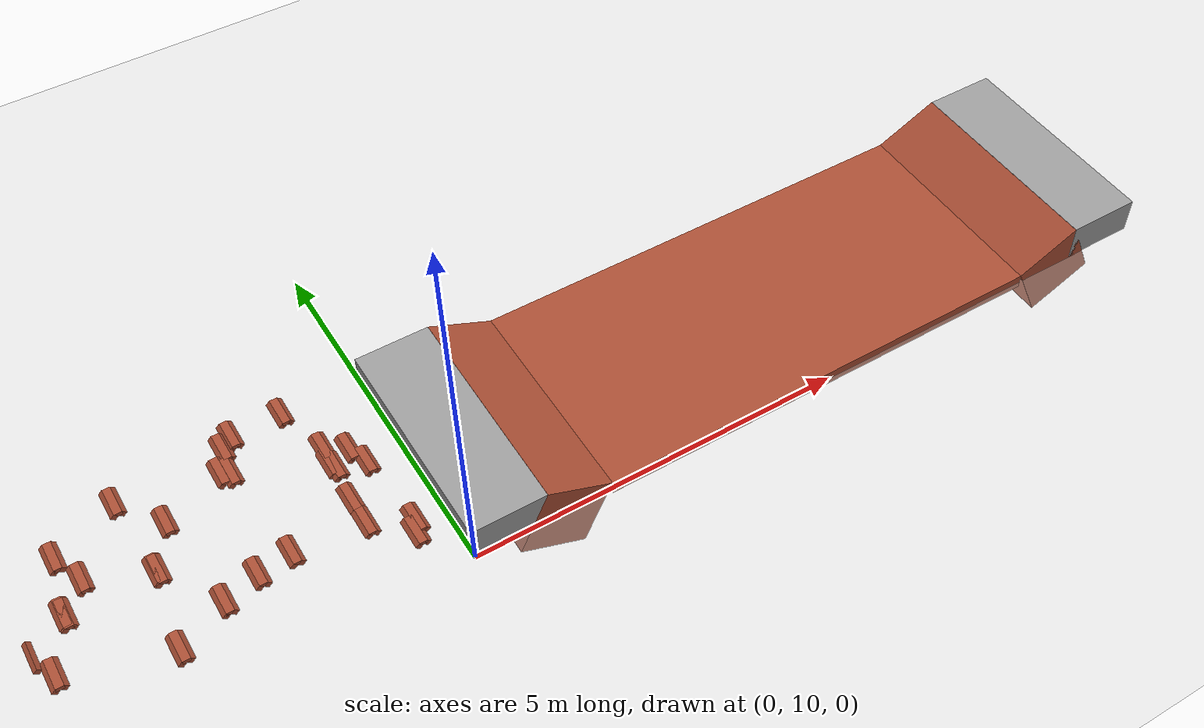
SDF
<sdf version="1.7">
 <world name="default">
  <model name="ground_plane">
   <static>1</static>
   <link name="link">
    <collision name="collision">
     <geometry><plane><normal>0 0 1</normal><size>100 100</size></plane></geometry>
     <surface><friction><ode><mu>100</mu><mu2>50</mu2></ode></friction></surface>
    </collision>
    <visual name="visual">
     <cast_shadows>0</cast_shadows>
     <geometry><plane><normal>0 0 1</normal><size>100 100</size></plane></geometry>
     <material>
      <script><uri>file://media/materials/scripts/gazebo.material</uri><name>Gazebo/Grey</name></script>
     </material>
    </visual>
   </link>
  </model>
  <model name="tumsek">
   <static>1</static>
   <pose>-5.17447 11.4027 0.5 0 -0 0</pose>
   <link name="tumsek_main_5">
    <pose>4.60433 0.123551 0 0 -0 0</pose>
    <collision name="tumsek_Collision">
     <geometry><box><size>0.1 0.4 0.05</size></box></geometry>
     <pose>0 0 0.025 0 -0 0</pose>
    </collision>
    <visual name="tumsek_Visual">
     <pose>0 0 0.025 0 -0 0</pose>
     <geometry><box><size>0.1 0.4 0.05</size></box></geometry>
     <material>
      <script><uri>file://media/materials/scripts/gazebo.material</uri><name>Gazebo/Bricks</name></script>
      <ambient>1 1 1 1</ambient>
     </material>
     <meta><layer>0</layer></meta>
    </visual>
   </link>
   <link name="tumsek_front_5">
    <pose>4.65433 0.123551 0 0 0.785 0</pose>
    <collision name="tumsek_Collision"><geometry><box><size>0.0707 0.4 0.0707</size></box></geometry></collision>
    <visual name="tumsek_Visual">
     <geometry><box><size>0.0707 0.4 0.0707</size></box></geometry>
     <material>
      <script><uri>file://media/materials/scripts/gazebo.material</uri><name>Gazebo/Bricks</name></script>
      <ambient>1 1 1 1</ambient>
     </material>
    </visual>
   </link>
   <link name="tumsek_back_5">
    <pose>4.55433 0.123551 0 0 0.785 0</pose>
    <collision name="tumsek_Collision"><geometry><box><size>0.0707 0.4 0.0707</size></box></geometry></collision>
    <visual name="tumsek_Visual">
     <geometry><box><size>0.0707 0.4 0.0707</size></box></geometry>
     <material>
      <script><uri>file://media/materials/scripts/gazebo.material</uri><name>Gazebo/Bricks</name></script>
      <ambient>1 1 1 1</ambient>
     </material>
    </visual>
   </link>
   <link name="tumsek_main_6">
    <pose>2.92633 -0.629082 0 0 -0 0</pose>
    <collision name="tumsek_Collision">
     <geometry><box><size>0.1 0.4 0.05</size></box></geometry>
     <pose>0 0 0.025 0 -0 0</pose>
    </collision>
    <visual name="tumsek_Visual">
     <pose>0 0 0.025 0 -0 0</pose>
     <geometry><box><size>0.1 0.4 0.05</size></box></geometry>
     <material>
      <script><uri>file://media/materials/scripts/gazebo.material</uri><name>Gazebo/Bricks</name></script>
      <ambient>1 1 1 1</ambient>
     </material>
     <meta><layer>0</layer></meta>
    </visual>
   </link>
   <link name="tumsek_front_6">
    <pose>2.97633 -0.629082 0 0 0.785 0</pose>
    <collision name="tumsek_Collision"><geometry><box><size>0.0707 0.4 0.0707</size></box></geometry></collision>
    <visual name="tumsek_Visual">
     <geometry><box><size>0.0707 0.4 0.0707</size></box></geometry>
     <material>
      <script><uri>file://media/materials/scripts/gazebo.material</uri><name>Gazebo/Bricks</name></script>
      <ambient>1 1 1 1</ambient>
     </material>
    </visual>
   </link>
   <link name="tumsek_back_6">
    <pose>2.87633 -0.629082 0 0 0.785 0</pose>
    <collision name="tumsek_Collision"><geometry><box><size>0.0707 0.4 0.0707</size></box></geometry></collision>
    <visual name="tumsek_Visual">
     <geometry><box><size>0.0707 0.4 0.0707</size></box></geometry>
     <material>
      <script><uri>file://media/materials/scripts/gazebo.material</uri><name>Gazebo/Bricks</name></script>
      <ambient>1 1 1 1</ambient>
     </material>
    </visual>
   </link>
   <link name="tumsek_main_7">
    <pose>1.08805 0.739805 0 0 -0 0</pose>
    <collision name="tumsek_Collision">
     <geometry><box><size>0.1 0.4 0.05</size></box></geometry>
     <pose>0 0 0.025 0 -0 0</pose>
    </collision>
    <visual name="tumsek_Visual">
     <pose>0 0 0.025 0 -0 0</pose>
     <geometry><box><size>0.1 0.4 0.05</size></box></geometry>
     <material>
      <script><uri>file://media/materials/scripts/gazebo.material</uri><name>Gazebo/Bricks</name></script>
      <ambient>1 1 1 1</ambient>
     </material>
     <meta><layer>0</layer></meta>
    </visual>
   </link>
   <link name="tumsek_front_7">
    <pose>1.13805 0.739805 0 0 0.785 0</pose>
    <collision name="tumsek_Collision"><geometry><box><size>0.0707 0.4 0.0707</size></box></geometry></collision>
    <visual name="tumsek_Visual">
     <geometry><box><size>0.0707 0.4 0.0707</size></box></geometry>
     <material>
      <script><uri>file://media/materials/scripts/gazebo.material</uri><name>Gazebo/Bricks</name></script>
      <ambient>1 1 1 1</ambient>
     </material>
    </visual>
   </link>
   <link name="tumsek_back_7">
    <pose>1.03805 0.739805 0 0 0.785 0</pose>
    <collision name="tumsek_Collision"><geometry><box><size>0.0707 0.4 0.0707</size></box></geometry></collision>
    <visual name="tumsek_Visual">
     <geometry><box><size>0.0707 0.4 0.0707</size></box></geometry>
     <material>
      <script><uri>file://media/materials/scripts/gazebo.material</uri><name>Gazebo/Bricks</name></script>
      <ambient>1 1 1 1</ambient>
     </material>
    </visual>
   </link>
   <link name="tumsek_main_8">
    <pose>3.2512 1.16803 0 0 -0 0</pose>
    <collision name="tumsek_Collision">
     <geometry><box><size>0.1 0.4 0.05</size></box></geometry>
     <pose>0 0 0.025 0 -0 0</pose>
    </collision>
    <visual name="tumsek_Visual">
     <pose>0 0 0.025 0 -0 0</pose>
     <geometry><box><size>0.1 0.4 0.05</size></box></geometry>
     <material>
      <script><uri>file://media/materials/scripts/gazebo.material</uri><name>Gazebo/Bricks</name></script>
      <ambient>1 1 1 1</ambient>
     </material>
     <meta><layer>0</layer></meta>
    </visual>
   </link>
   <link name="tumsek_front_8">
    <pose>3.3012 1.16803 0 0 0.785 0</pose>
    <collision name="tumsek_Collision"><geometry><box><size>0.0707 0.4 0.0707</size></box></geometry></collision>
    <visual name="tumsek_Visual">
     <geometry><box><size>0.0707 0.4 0.0707</size></box></geometry>
     <material>
      <script><uri>file://media/materials/scripts/gazebo.material</uri><name>Gazebo/Bricks</name></script>
      <ambient>1 1 1 1</ambient>
     </material>
    </visual>
   </link>
   <link name="tumsek_back_8">
    <pose>3.2012 1.16803 0 0 0.785 0</pose>
    <collision name="tumsek_Collision"><geometry><box><size>0.0707 0.4 0.0707</size></box></geometry></collision>
    <visual name="tumsek_Visual">
     <geometry><box><size>0.0707 0.4 0.0707</size></box></geometry>
     <material>
      <script><uri>file://media/materials/scripts/gazebo.material</uri><name>Gazebo/Bricks</name></script>
      <ambient>1 1 1 1</ambient>
     </material>
    </visual>
   </link>
   <link name="tumsek_main_11">
    <pose>2.31423 0.549426 0 0 -0 0</pose>
    <collision name="tumsek_Collision">
     <geometry><box><size>0.1 0.4 0.05</size></box></geometry>
     <pose>0 0 0.025 0 -0 0</pose>
    </collision>
    <visual name="tumsek_Visual">
     <pose>0 0 0.025 0 -0 0</pose>
     <geometry><box><size>0.1 0.4 0.05</size></box></geometry>
     <material>
      <script><uri>file://media/materials/scripts/gazebo.material</uri><name>Gazebo/Bricks</name></script>
      <ambient>1 1 1 1</ambient>
     </material>
     <meta><layer>0</layer></meta>
    </visual>
   </link>
   <link name="tumsek_front_11">
    <pose>2.36423 0.549426 0 0 0.785 0</pose>
    <collision name="tumsek_Collision"><geometry><box><size>0.0707 0.4 0.0707</size></box></geometry></collision>
    <visual name="tumsek_Visual">
     <geometry><box><size>0.0707 0.4 0.0707</size></box></geometry>
     <material>
      <script><uri>file://media/materials/scripts/gazebo.material</uri><name>Gazebo/Bricks</name></script>
      <ambient>1 1 1 1</ambient>
     </material>
    </visual>
   </link>
   <link name="tumsek_back_11">
    <pose>2.26423 0.549426 0 0 0.785 0</pose>
    <collision name="tumsek_Collision"><geometry><box><size>0.0707 0.4 0.0707</size></box></geometry></collision>
    <visual name="tumsek_Visual">
     <geometry><box><size>0.0707 0.4 0.0707</size></box></geometry>
     <material>
      <script><uri>file://media/materials/scripts/gazebo.material</uri><name>Gazebo/Bricks</name></script>
      <ambient>1 1 1 1</ambient>
     </material>
    </visual>
   </link>
   <link name="tumsek_main_15">
    <pose>4.22741 -0.649461 0 0 -0 0</pose>
    <collision name="tumsek_Collision">
     <geometry><box><size>0.1 0.4 0.05</size></box></geometry>
     <pose>0 0 0.025 0 -0 0</pose>
    </collision>
    <visual name="tumsek_Visual">
     <pose>0 0 0.025 0 -0 0</pose>
     <geometry><box><size>0.1 0.4 0.05</size></box></geometry>
     <material>
      <script><uri>file://media/materials/scripts/gazebo.material</uri><name>Gazebo/Bricks</name></script>
      <ambient>1 1 1 1</ambient>
     </material>
     <meta><layer>0</layer></meta>
    </visual>
   </link>
   <link name="tumsek_front_15">
    <pose>4.27741 -0.649461 0 0 0.785 0</pose>
    <collision name="tumsek_Collision"><geometry><box><size>0.0707 0.4 0.0707</size></box></geometry></collision>
    <visual name="tumsek_Visual">
     <geometry><box><size>0.0707 0.4 0.0707</size></box></geometry>
     <material>
      <script><uri>file://media/materials/scripts/gazebo.material</uri><name>Gazebo/Bricks</name></script>
      <ambient>1 1 1 1</ambient>
     </material>
    </visual>
   </link>
   <link name="tumsek_back_15">
    <pose>4.17741 -0.649461 0 0 0.785 0</pose>
    <collision name="tumsek_Collision"><geometry><box><size>0.0707 0.4 0.0707</size></box></geometry></collision>
    <visual name="tumsek_Visual">
     <geometry><box><size>0.0707 0.4 0.0707</size></box></geometry>
     <material>
      <script><uri>file://media/materials/scripts/gazebo.material</uri><name>Gazebo/Bricks</name></script>
      <ambient>1 1 1 1</ambient>
     </material>
    </visual>
   </link>
   <link name="tumsek_main_17">
    <pose>4.25374 0.570879 0 0 -0 0</pose>
    <collision name="tumsek_Collision">
     <geometry><box><size>0.1 0.4 0.05</size></box></geometry>
     <pose>0 0 0.025 0 -0 0</pose>
    </collision>
    <visual name="tumsek_Visual">
     <pose>0 0 0.025 0 -0 0</pose>
     <geometry><box><size>0.1 0.4 0.05</size></box></geometry>
     <material>
      <script><uri>file://media/materials/scripts/gazebo.material</uri><name>Gazebo/Bricks</name></script>
      <ambient>1 1 1 1</ambient>
     </material>
     <meta><layer>0</layer></meta>
    </visual>
   </link>
   <link name="tumsek_front_17">
    <pose>4.30374 0.570879 0 0 0.785 0</pose>
    <collision name="tumsek_Collision"><geometry><box><size>0.0707 0.4 0.0707</size></box></geometry></collision>
    <visual name="tumsek_Visual">
     <geometry><box><size>0.0707 0.4 0.0707</size></box></geometry>
     <material>
      <script><uri>file://media/materials/scripts/gazebo.material</uri><name>Gazebo/Bricks</name></script>
      <ambient>1 1 1 1</ambient>
     </material>
    </visual>
   </link>
   <link name="tumsek_back_17">
    <pose>4.20374 0.570879 0 0 0.785 0</pose>
    <collision name="tumsek_Collision"><geometry><box><size>0.0707 0.4 0.0707</size></box></geometry></collision>
    <visual name="tumsek_Visual">
     <geometry><box><size>0.0707 0.4 0.0707</size></box></geometry>
     <material>
      <script><uri>file://media/materials/scripts/gazebo.material</uri><name>Gazebo/Bricks</name></script>
      <ambient>1 1 1 1</ambient>
     </material>
    </visual>
   </link>
   <link name="tumsek_main_19">
    <pose>3.35353 -0.567816 0 0 -0 0</pose>
    <collision name="tumsek_Collision">
     <geometry><box><size>0.1 0.4 0.05</size></box></geometry>
     <pose>0 0 0.025 0 -0 0</pose>
    </collision>
    <visual name="tumsek_Visual">
     <pose>0 0 0.025 0 -0 0</pose>
     <geometry><box><size>0.1 0.4 0.05</size></box></geometry>
     <material>
      <script><uri>file://media/materials/scripts/gazebo.material</uri><name>Gazebo/Bricks</name></script>
      <ambient>1 1 1 1</ambient>
     </material>
     <meta><layer>0</layer></meta>
    </visual>
   </link>
   <link name="tumsek_front_19">
    <pose>3.40353 -0.567816 0 0 0.785 0</pose>
    <collision name="tumsek_Collision"><geometry><box><size>0.0707 0.4 0.0707</size></box></geometry></collision>
    <visual name="tumsek_Visual">
     <geometry><box><size>0.0707 0.4 0.0707</size></box></geometry>
     <material>
      <script><uri>file://media/materials/scripts/gazebo.material</uri><name>Gazebo/Bricks</name></script>
      <ambient>1 1 1 1</ambient>
     </material>
    </visual>
   </link>
   <link name="tumsek_back_19">
    <pose>3.30353 -0.567816 0 0 0.785 0</pose>
    <collision name="tumsek_Collision"><geometry><box><size>0.0707 0.4 0.0707</size></box></geometry></collision>
    <visual name="tumsek_Visual">
     <geometry><box><size>0.0707 0.4 0.0707</size></box></geometry>
     <material>
      <script><uri>file://media/materials/scripts/gazebo.material</uri><name>Gazebo/Bricks</name></script>
      <ambient>1 1 1 1</ambient>
     </material>
    </visual>
   </link>
   <link name="tumsek_main_22">
    <pose>3.20055 0.798281 0 0 -0 0</pose>
    <collision name="tumsek_Collision">
     <geometry><box><size>0.1 0.4 0.05</size></box></geometry>
     <pose>0 0 0.025 0 -0 0</pose>
    </collision>
    <visual name="tumsek_Visual">
     <pose>0 0 0.025 0 -0 0</pose>
     <geometry><box><size>0.1 0.4 0.05</size></box></geometry>
     <material>
      <script><uri>file://media/materials/scripts/gazebo.material</uri><name>Gazebo/Bricks</name></script>
      <ambient>1 1 1 1</ambient>
     </material>
     <meta><layer>0</layer></meta>
    </visual>
   </link>
   <link name="tumsek_front_22">
    <pose>3.25055 0.798281 0 0 0.785 0</pose>
    <collision name="tumsek_Collision"><geometry><box><size>0.0707 0.4 0.0707</size></box></geometry></collision>
    <visual name="tumsek_Visual">
     <geometry><box><size>0.0707 0.4 0.0707</size></box></geometry>
     <material>
      <script><uri>file://media/materials/scripts/gazebo.material</uri><name>Gazebo/Bricks</name></script>
      <ambient>1 1 1 1</ambient>
     </material>
    </visual>
   </link>
   <link name="tumsek_back_22">
    <pose>3.15055 0.798281 0 0 0.785 0</pose>
    <collision name="tumsek_Collision"><geometry><box><size>0.0707 0.4 0.0707</size></box></geometry></collision>
    <visual name="tumsek_Visual">
     <geometry><box><size>0.0707 0.4 0.0707</size></box></geometry>
     <material>
      <script><uri>file://media/materials/scripts/gazebo.material</uri><name>Gazebo/Bricks</name></script>
      <ambient>1 1 1 1</ambient>
     </material>
    </visual>
   </link>
   <link name="tumsek_main_23">
    <pose>1.8665 -1.06323 0 0 -0 0</pose>
    <collision name="tumsek_Collision">
     <geometry><box><size>0.1 0.4 0.05</size></box></geometry>
     <pose>0 0 0.025 0 -0 0</pose>
    </collision>
    <visual name="tumsek_Visual">
     <pose>0 0 0.025 0 -0 0</pose>
     <geometry><box><size>0.1 0.4 0.05</size></box></geometry>
     <material>
      <script><uri>file://media/materials/scripts/gazebo.material</uri><name>Gazebo/Bricks</name></script>
      <ambient>1 1 1 1</ambient>
     </material>
     <meta><layer>0</layer></meta>
    </visual>
   </link>
   <link name="tumsek_front_23">
    <pose>1.9165 -1.06323 0 0 0.785 0</pose>
    <collision name="tumsek_Collision"><geometry><box><size>0.0707 0.4 0.0707</size></box></geometry></collision>
    <visual name="tumsek_Visual">
     <geometry><box><size>0.0707 0.4 0.0707</size></box></geometry>
     <material>
      <script><uri>file://media/materials/scripts/gazebo.material</uri><name>Gazebo/Bricks</name></script>
      <ambient>1 1 1 1</ambient>
     </material>
    </visual>
   </link>
   <link name="tumsek_back_23">
    <pose>1.8165 -1.06323 0 0 0.785 0</pose>
    <collision name="tumsek_Collision"><geometry><box><size>0.0707 0.4 0.0707</size></box></geometry></collision>
    <visual name="tumsek_Visual">
     <geometry><box><size>0.0707 0.4 0.0707</size></box></geometry>
     <material>
      <script><uri>file://media/materials/scripts/gazebo.material</uri><name>Gazebo/Bricks</name></script>
      <ambient>1 1 1 1</ambient>
     </material>
    </visual>
   </link>
   <link name="tumsek_main_24">
    <pose>4.26469 0.239163 0 0 -0 0</pose>
    <collision name="tumsek_Collision">
     <geometry><box><size>0.1 0.4 0.05</size></box></geometry>
     <pose>0 0 0.025 0 -0 0</pose>
    </collision>
    <visual name="tumsek_Visual">
     <pose>0 0 0.025 0 -0 0</pose>
     <geometry><box><size>0.1 0.4 0.05</size></box></geometry>
     <material>
      <script><uri>file://media/materials/scripts/gazebo.material</uri><name>Gazebo/Bricks</name></script>
      <ambient>1 1 1 1</ambient>
     </material>
     <meta><layer>0</layer></meta>
    </visual>
   </link>
   <link name="tumsek_front_24">
    <pose>4.31468 0.239163 0 0 0.785 0</pose>
    <collision name="tumsek_Collision"><geometry><box><size>0.0707 0.4 0.0707</size></box></geometry></collision>
    <visual name="tumsek_Visual">
     <geometry><box><size>0.0707 0.4 0.0707</size></box></geometry>
     <material>
      <script><uri>file://media/materials/scripts/gazebo.material</uri><name>Gazebo/Bricks</name></script>
      <ambient>1 1 1 1</ambient>
     </material>
    </visual>
   </link>
   <link name="tumsek_back_24">
    <pose>4.21469 0.239163 0 0 0.785 0</pose>
    <collision name="tumsek_Collision"><geometry><box><size>0.0707 0.4 0.0707</size></box></geometry></collision>
    <visual name="tumsek_Visual">
     <geometry><box><size>0.0707 0.4 0.0707</size></box></geometry>
     <material>
      <script><uri>file://media/materials/scripts/gazebo.material</uri><name>Gazebo/Bricks</name></script>
      <ambient>1 1 1 1</ambient>
     </material>
    </visual>
   </link>
   <link name="tumsek_main_25">
    <pose>2.01096 -0.019513 0 0 -0 0</pose>
    <collision name="tumsek_Collision">
     <geometry><box><size>0.1 0.4 0.05</size></box></geometry>
     <pose>0 0 0.025 0 -0 0</pose>
    </collision>
    <visual name="tumsek_Visual">
     <pose>0 0 0.025 0 -0 0</pose>
     <geometry><box><size>0.1 0.4 0.05</size></box></geometry>
     <material>
      <script><uri>file://media/materials/scripts/gazebo.material</uri><name>Gazebo/Bricks</name></script>
      <ambient>1 1 1 1</ambient>
     </material>
     <meta><layer>0</layer></meta>
    </visual>
   </link>
   <link name="tumsek_front_25">
    <pose>2.06095 -0.019513 0 0 0.785 0</pose>
    <collision name="tumsek_Collision"><geometry><box><size>0.0707 0.4 0.0707</size></box></geometry></collision>
    <visual name="tumsek_Visual">
     <geometry><box><size>0.0707 0.4 0.0707</size></box></geometry>
     <material>
      <script><uri>file://media/materials/scripts/gazebo.material</uri><name>Gazebo/Bricks</name></script>
      <ambient>1 1 1 1</ambient>
     </material>
    </visual>
   </link>
   <link name="tumsek_back_25">
    <pose>1.96096 -0.019513 0 0 0.785 0</pose>
    <collision name="tumsek_Collision"><geometry><box><size>0.0707 0.4 0.0707</size></box></geometry></collision>
    <visual name="tumsek_Visual">
     <geometry><box><size>0.0707 0.4 0.0707</size></box></geometry>
     <material>
      <script><uri>file://media/materials/scripts/gazebo.material</uri><name>Gazebo/Bricks</name></script>
      <ambient>1 1 1 1</ambient>
     </material>
    </visual>
   </link>
   <link name="tumsek_main_26">
    <pose>0.957826 -0.026631 0 0 -0 0</pose>
    <collision name="tumsek_Collision">
     <geometry><box><size>0.1 0.4 0.05</size></box></geometry>
     <pose>0 0 0.025 0 -0 0</pose>
    </collision>
    <visual name="tumsek_Visual">
     <pose>0 0 0.025 0 -0 0</pose>
     <geometry><box><size>0.1 0.4 0.05</size></box></geometry>
     <material>
      <script><uri>file://media/materials/scripts/gazebo.material</uri><name>Gazebo/Bricks</name></script>
      <ambient>1 1 1 1</ambient>
     </material>
     <meta><layer>0</layer></meta>
    </visual>
   </link>
   <link name="tumsek_front_26">
    <pose>1.00783 -0.026631 0 0 0.785 0</pose>
    <collision name="tumsek_Collision"><geometry><box><size>0.0707 0.4 0.0707</size></box></geometry></collision>
    <visual name="tumsek_Visual">
     <geometry><box><size>0.0707 0.4 0.0707</size></box></geometry>
     <material>
      <script><uri>file://media/materials/scripts/gazebo.material</uri><name>Gazebo/Bricks</name></script>
      <ambient>1 1 1 1</ambient>
     </material>
    </visual>
   </link>
   <link name="tumsek_back_26">
    <pose>0.907826 -0.026631 0 0 0.785 0</pose>
    <collision name="tumsek_Collision"><geometry><box><size>0.0707 0.4 0.0707</size></box></geometry></collision>
    <visual name="tumsek_Visual">
     <geometry><box><size>0.0707 0.4 0.0707</size></box></geometry>
     <material>
      <script><uri>file://media/materials/scripts/gazebo.material</uri><name>Gazebo/Bricks</name></script>
      <ambient>1 1 1 1</ambient>
     </material>
    </visual>
   </link>
   <link name="tumsek_main_33">
    <pose>4.23212 0.313951 0 0 -0 0</pose>
    <collision name="tumsek_Collision">
     <geometry><box><size>0.1 0.4 0.05</size></box></geometry>
     <pose>0 0 0.025 0 -0 0</pose>
    </collision>
    <visual name="tumsek_Visual">
     <pose>0 0 0.025 0 -0 0</pose>
     <geometry><box><size>0.1 0.4 0.05</size></box></geometry>
     <material>
      <script><uri>file://media/materials/scripts/gazebo.material</uri><name>Gazebo/Bricks</name></script>
      <ambient>1 1 1 1</ambient>
     </material>
     <meta><layer>0</layer></meta>
    </visual>
   </link>
   <link name="tumsek_front_33">
    <pose>4.28212 0.313951 0 0 0.785 0</pose>
    <collision name="tumsek_Collision"><geometry><box><size>0.0707 0.4 0.0707</size></box></geometry></collision>
    <visual name="tumsek_Visual">
     <geometry><box><size>0.0707 0.4 0.0707</size></box></geometry>
     <material>
      <script><uri>file://media/materials/scripts/gazebo.material</uri><name>Gazebo/Bricks</name></script>
      <ambient>1 1 1 1</ambient>
     </material>
    </visual>
   </link>
   <link name="tumsek_back_33">
    <pose>4.18211 0.313951 0 0 0.785 0</pose>
    <collision name="tumsek_Collision"><geometry><box><size>0.0707 0.4 0.0707</size></box></geometry></collision>
    <visual name="tumsek_Visual">
     <geometry><box><size>0.0707 0.4 0.0707</size></box></geometry>
     <material>
      <script><uri>file://media/materials/scripts/gazebo.material</uri><name>Gazebo/Bricks</name></script>
      <ambient>1 1 1 1</ambient>
     </material>
    </visual>
   </link>
   <link name="tumsek_main_34">
    <pose>1.90357 1.10206 0 0 -0 0</pose>
    <collision name="tumsek_Collision">
     <geometry><box><size>0.1 0.4 0.05</size></box></geometry>
     <pose>0 0 0.025 0 -0 0</pose>
    </collision>
    <visual name="tumsek_Visual">
     <pose>0 0 0.025 0 -0 0</pose>
     <geometry><box><size>0.1 0.4 0.05</size></box></geometry>
     <material>
      <script><uri>file://media/materials/scripts/gazebo.material</uri><name>Gazebo/Bricks</name></script>
      <ambient>1 1 1 1</ambient>
     </material>
     <meta><layer>0</layer></meta>
    </visual>
   </link>
   <link name="tumsek_front_34">
    <pose>1.95357 1.10206 0 0 0.785 0</pose>
    <collision name="tumsek_Collision"><geometry><box><size>0.0707 0.4 0.0707</size></box></geometry></collision>
    <visual name="tumsek_Visual">
     <geometry><box><size>0.0707 0.4 0.0707</size></box></geometry>
     <material>
      <script><uri>file://media/materials/scripts/gazebo.material</uri><name>Gazebo/Bricks</name></script>
      <ambient>1 1 1 1</ambient>
     </material>
    </visual>
   </link>
   <link name="tumsek_back_34">
    <pose>1.85357 1.10206 0 0 0.785 0</pose>
    <collision name="tumsek_Collision"><geometry><box><size>0.0707 0.4 0.0707</size></box></geometry></collision>
    <visual name="tumsek_Visual">
     <geometry><box><size>0.0707 0.4 0.0707</size></box></geometry>
     <material>
      <script><uri>file://media/materials/scripts/gazebo.material</uri><name>Gazebo/Bricks</name></script>
      <ambient>1 1 1 1</ambient>
     </material>
    </visual>
   </link>
   <link name="tumsek_main_35">
    <pose>2.00097 -0.004756 0 0 -0 0</pose>
    <collision name="tumsek_Collision">
     <geometry><box><size>0.1 0.4 0.05</size></box></geometry>
     <pose>0 0 0.025 0 -0 0</pose>
    </collision>
    <visual name="tumsek_Visual">
     <pose>0 0 0.025 0 -0 0</pose>
     <geometry><box><size>0.1 0.4 0.05</size></box></geometry>
     <material>
      <script><uri>file://media/materials/scripts/gazebo.material</uri><name>Gazebo/Bricks</name></script>
      <ambient>1 1 1 1</ambient>
     </material>
     <meta><layer>0</layer></meta>
    </visual>
   </link>
   <link name="tumsek_front_35">
    <pose>2.05097 -0.004756 0 0 0.785 0</pose>
    <collision name="tumsek_Collision"><geometry><box><size>0.0707 0.4 0.0707</size></box></geometry></collision>
    <visual name="tumsek_Visual">
     <geometry><box><size>0.0707 0.4 0.0707</size></box></geometry>
     <material>
      <script><uri>file://media/materials/scripts/gazebo.material</uri><name>Gazebo/Bricks</name></script>
      <ambient>1 1 1 1</ambient>
     </material>
    </visual>
   </link>
   <link name="tumsek_back_35">
    <pose>1.95097 -0.004756 0 0 0.785 0</pose>
    <collision name="tumsek_Collision"><geometry><box><size>0.0707 0.4 0.0707</size></box></geometry></collision>
    <visual name="tumsek_Visual">
     <geometry><box><size>0.0707 0.4 0.0707</size></box></geometry>
     <material>
      <script><uri>file://media/materials/scripts/gazebo.material</uri><name>Gazebo/Bricks</name></script>
      <ambient>1 1 1 1</ambient>
     </material>
    </visual>
   </link>
   <link name="tumsek_main_41">
    <pose>4.71915 -0.899925 0 0 -0 0</pose>
    <collision name="tumsek_Collision">
     <geometry><box><size>0.1 0.4 0.05</size></box></geometry>
     <pose>0 0 0.025 0 -0 0</pose>
    </collision>
    <visual name="tumsek_Visual">
     <pose>0 0 0.025 0 -0 0</pose>
     <geometry><box><size>0.1 0.4 0.05</size></box></geometry>
     <material>
      <script><uri>file://media/materials/scripts/gazebo.material</uri><name>Gazebo/Bricks</name></script>
      <ambient>1 1 1 1</ambient>
     </material>
     <meta><layer>0</layer></meta>
    </visual>
   </link>
   <link name="tumsek_front_41">
    <pose>4.76915 -0.899925 0 0 0.785 0</pose>
    <collision name="tumsek_Collision"><geometry><box><size>0.0707 0.4 0.0707</size></box></geometry></collision>
    <visual name="tumsek_Visual">
     <geometry><box><size>0.0707 0.4 0.0707</size></box></geometry>
     <material>
      <script><uri>file://media/materials/scripts/gazebo.material</uri><name>Gazebo/Bricks</name></script>
      <ambient>1 1 1 1</ambient>
     </material>
    </visual>
   </link>
   <link name="tumsek_back_41">
    <pose>4.66915 -0.899925 0 0 0.785 0</pose>
    <collision name="tumsek_Collision"><geometry><box><size>0.0707 0.4 0.0707</size></box></geometry></collision>
    <visual name="tumsek_Visual">
     <geometry><box><size>0.0707 0.4 0.0707</size></box></geometry>
     <material>
      <script><uri>file://media/materials/scripts/gazebo.material</uri><name>Gazebo/Bricks</name></script>
      <ambient>1 1 1 1</ambient>
     </material>
    </visual>
   </link>
   <link name="tumsek_main_43">
    <pose>0.634692 -0.672287 0 0 -0 0</pose>
    <collision name="tumsek_Collision">
     <geometry><box><size>0.1 0.4 0.05</size></box></geometry>
     <pose>0 0 0.025 0 -0 0</pose>
    </collision>
    <visual name="tumsek_Visual">
     <pose>0 0 0.025 0 -0 0</pose>
     <geometry><box><size>0.1 0.4 0.05</size></box></geometry>
     <material>
      <script><uri>file://media/materials/scripts/gazebo.material</uri><name>Gazebo/Bricks</name></script>
      <ambient>1 1 1 1</ambient>
     </material>
     <meta><layer>0</layer></meta>
    </visual>
   </link>
   <link name="tumsek_front_43">
    <pose>0.684692 -0.672287 0 0 0.785 0</pose>
    <collision name="tumsek_Collision"><geometry><box><size>0.0707 0.4 0.0707</size></box></geometry></collision>
    <visual name="tumsek_Visual">
     <geometry><box><size>0.0707 0.4 0.0707</size></box></geometry>
     <material>
      <script><uri>file://media/materials/scripts/gazebo.material</uri><name>Gazebo/Bricks</name></script>
      <ambient>1 1 1 1</ambient>
     </material>
    </visual>
   </link>
   <link name="tumsek_back_43">
    <pose>0.584692 -0.672287 0 0 0.785 0</pose>
    <collision name="tumsek_Collision"><geometry><box><size>0.0707 0.4 0.0707</size></box></geometry></collision>
    <visual name="tumsek_Visual">
     <geometry><box><size>0.0707 0.4 0.0707</size></box></geometry>
     <material>
      <script><uri>file://media/materials/scripts/gazebo.material</uri><name>Gazebo/Bricks</name></script>
      <ambient>1 1 1 1</ambient>
     </material>
    </visual>
   </link>
   <link name="tumsek_main_44">
    <pose>4.22276 -0.263765 0 0 -0 0</pose>
    <collision name="tumsek_Collision">
     <geometry><box><size>0.1 0.4 0.05</size></box></geometry>
     <pose>0 0 0.025 0 -0 0</pose>
    </collision>
    <visual name="tumsek_Visual">
     <pose>0 0 0.025 0 -0 0</pose>
     <geometry><box><size>0.1 0.4 0.05</size></box></geometry>
     <material>
      <script><uri>file://media/materials/scripts/gazebo.material</uri><name>Gazebo/Bricks</name></script>
      <ambient>1 1 1 1</ambient>
     </material>
     <meta><layer>0</layer></meta>
    </visual>
   </link>
   <link name="tumsek_front_44">
    <pose>4.27276 -0.263765 0 0 0.785 0</pose>
    <collision name="tumsek_Collision"><geometry><box><size>0.0707 0.4 0.0707</size></box></geometry></collision>
    <visual name="tumsek_Visual">
     <geometry><box><size>0.0707 0.4 0.0707</size></box></geometry>
     <material>
      <script><uri>file://media/materials/scripts/gazebo.material</uri><name>Gazebo/Bricks</name></script>
      <ambient>1 1 1 1</ambient>
     </material>
    </visual>
   </link>
   <link name="tumsek_back_44">
    <pose>4.17276 -0.263765 0 0 0.785 0</pose>
    <collision name="tumsek_Collision"><geometry><box><size>0.0707 0.4 0.0707</size></box></geometry></collision>
    <visual name="tumsek_Visual">
     <geometry><box><size>0.0707 0.4 0.0707</size></box></geometry>
     <material>
      <script><uri>file://media/materials/scripts/gazebo.material</uri><name>Gazebo/Bricks</name></script>
      <ambient>1 1 1 1</ambient>
     </material>
    </visual>
   </link>
   <link name="tumsek_main_46">
    <pose>1.25877 0.324215 0 0 -0 0</pose>
    <collision name="tumsek_Collision">
     <geometry><box><size>0.1 0.4 0.05</size></box></geometry>
     <pose>0 0 0.025 0 -0 0</pose>
    </collision>
    <visual name="tumsek_Visual">
     <pose>0 0 0.025 0 -0 0</pose>
     <geometry><box><size>0.1 0.4 0.05</size></box></geometry>
     <material>
      <script><uri>file://media/materials/scripts/gazebo.material</uri><name>Gazebo/Bricks</name></script>
      <ambient>1 1 1 1</ambient>
     </material>
     <meta><layer>0</layer></meta>
    </visual>
   </link>
   <link name="tumsek_front_46">
    <pose>1.30877 0.324215 0 0 0.785 0</pose>
    <collision name="tumsek_Collision"><geometry><box><size>0.0707 0.4 0.0707</size></box></geometry></collision>
    <visual name="tumsek_Visual">
     <geometry><box><size>0.0707 0.4 0.0707</size></box></geometry>
     <material>
      <script><uri>file://media/materials/scripts/gazebo.material</uri><name>Gazebo/Bricks</name></script>
      <ambient>1 1 1 1</ambient>
     </material>
    </visual>
   </link>
   <link name="tumsek_back_46">
    <pose>1.20877 0.324215 0 0 0.785 0</pose>
    <collision name="tumsek_Collision"><geometry><box><size>0.0707 0.4 0.0707</size></box></geometry></collision>
    <visual name="tumsek_Visual">
     <geometry><box><size>0.0707 0.4 0.0707</size></box></geometry>
     <material>
      <script><uri>file://media/materials/scripts/gazebo.material</uri><name>Gazebo/Bricks</name></script>
      <ambient>1 1 1 1</ambient>
     </material>
    </visual>
   </link>
   <link name="tumsek_main_48">
    <pose>3.09964 0.856042 0 0 -0 0</pose>
    <collision name="tumsek_Collision">
     <geometry><box><size>0.1 0.4 0.05</size></box></geometry>
     <pose>0 0 0.025 0 -0 0</pose>
    </collision>
    <visual name="tumsek_Visual">
     <pose>0 0 0.025 0 -0 0</pose>
     <geometry><box><size>0.1 0.4 0.05</size></box></geometry>
     <material>
      <script><uri>file://media/materials/scripts/gazebo.material</uri><name>Gazebo/Bricks</name></script>
      <ambient>1 1 1 1</ambient>
     </material>
     <meta><layer>0</layer></meta>
    </visual>
   </link>
   <link name="tumsek_front_48">
    <pose>3.14963 0.856042 0 0 0.785 0</pose>
    <collision name="tumsek_Collision"><geometry><box><size>0.0707 0.4 0.0707</size></box></geometry></collision>
    <visual name="tumsek_Visual">
     <geometry><box><size>0.0707 0.4 0.0707</size></box></geometry>
     <material>
      <script><uri>file://media/materials/scripts/gazebo.material</uri><name>Gazebo/Bricks</name></script>
      <ambient>1 1 1 1</ambient>
     </material>
    </visual>
   </link>
   <link name="tumsek_back_48">
    <pose>3.04963 0.856042 0 0 0.785 0</pose>
    <collision name="tumsek_Collision"><geometry><box><size>0.0707 0.4 0.0707</size></box></geometry></collision>
    <visual name="tumsek_Visual">
     <geometry><box><size>0.0707 0.4 0.0707</size></box></geometry>
     <material>
      <script><uri>file://media/materials/scripts/gazebo.material</uri><name>Gazebo/Bricks</name></script>
      <ambient>1 1 1 1</ambient>
     </material>
    </visual>
   </link>
   <link name="tumsek_main_49">
    <pose>0.94678 -0.004355 0 0 -0 0</pose>
    <collision name="tumsek_Collision">
     <geometry><box><size>0.1 0.4 0.05</size></box></geometry>
     <pose>0 0 0.025 0 -0 0</pose>
    </collision>
    <visual name="tumsek_Visual">
     <pose>0 0 0.025 0 -0 0</pose>
     <geometry><box><size>0.1 0.4 0.05</size></box></geometry>
     <material>
      <script><uri>file://media/materials/scripts/gazebo.material</uri><name>Gazebo/Bricks</name></script>
      <ambient>1 1 1 1</ambient>
     </material>
     <meta><layer>0</layer></meta>
    </visual>
   </link>
   <link name="tumsek_front_49">
    <pose>0.99678 -0.004355 0 0 0.785 0</pose>
    <collision name="tumsek_Collision"><geometry><box><size>0.0707 0.4 0.0707</size></box></geometry></collision>
    <visual name="tumsek_Visual">
     <geometry><box><size>0.0707 0.4 0.0707</size></box></geometry>
     <material>
      <script><uri>file://media/materials/scripts/gazebo.material</uri><name>Gazebo/Bricks</name></script>
      <ambient>1 1 1 1</ambient>
     </material>
    </visual>
   </link>
   <link name="tumsek_back_49">
    <pose>0.89678 -0.004355 0 0 0.785 0</pose>
    <collision name="tumsek_Collision"><geometry><box><size>0.0707 0.4 0.0707</size></box></geometry></collision>
    <visual name="tumsek_Visual">
     <geometry><box><size>0.0707 0.4 0.0707</size></box></geometry>
     <material>
      <script><uri>file://media/materials/scripts/gazebo.material</uri><name>Gazebo/Bricks</name></script>
      <ambient>1 1 1 1</ambient>
     </material>
    </visual>
   </link>
   <link name="tumsek_main_50">
    <pose>2.48348 -0.764282 0 0 -0 0</pose>
    <collision name="tumsek_Collision">
     <geometry><box><size>0.1 0.4 0.05</size></box></geometry>
     <pose>0 0 0.025 0 -0 0</pose>
    </collision>
    <visual name="tumsek_Visual">
     <pose>0 0 0.025 0 -0 0</pose>
     <geometry><box><size>0.1 0.4 0.05</size></box></geometry>
     <material>
      <script><uri>file://media/materials/scripts/gazebo.material</uri><name>Gazebo/Bricks</name></script>
      <ambient>1 1 1 1</ambient>
     </material>
     <meta><layer>0</layer></meta>
    </visual>
   </link>
   <link name="tumsek_front_50">
    <pose>2.53348 -0.764282 0 0 0.785 0</pose>
    <collision name="tumsek_Collision"><geometry><box><size>0.0707 0.4 0.0707</size></box></geometry></collision>
    <visual name="tumsek_Visual">
     <geometry><box><size>0.0707 0.4 0.0707</size></box></geometry>
     <material>
      <script><uri>file://media/materials/scripts/gazebo.material</uri><name>Gazebo/Bricks</name></script>
      <ambient>1 1 1 1</ambient>
     </material>
    </visual>
   </link>
   <link name="tumsek_back_50">
    <pose>2.43348 -0.764282 0 0 0.785 0</pose>
    <collision name="tumsek_Collision"><geometry><box><size>0.0707 0.4 0.0707</size></box></geometry></collision>
    <visual name="tumsek_Visual">
     <geometry><box><size>0.0707 0.4 0.0707</size></box></geometry>
     <material>
      <script><uri>file://media/materials/scripts/gazebo.material</uri><name>Gazebo/Bricks</name></script>
      <ambient>1 1 1 1</ambient>
     </material>
    </visual>
   </link>
   <link name="tumsek_main_52">
    <pose>4.04205 1.29813 0 0 -0 0</pose>
    <collision name="tumsek_Collision">
     <geometry><box><size>0.1 0.4 0.05</size></box></geometry>
     <pose>0 0 0.025 0 -0 0</pose>
    </collision>
    <visual name="tumsek_Visual">
     <pose>0 0 0.025 0 -0 0</pose>
     <geometry><box><size>0.1 0.4 0.05</size></box></geometry>
     <material>
      <script><uri>file://media/materials/scripts/gazebo.material</uri><name>Gazebo/Bricks</name></script>
      <ambient>1 1 1 1</ambient>
     </material>
     <meta><layer>0</layer></meta>
    </visual>
   </link>
   <link name="tumsek_front_52">
    <pose>4.09205 1.29813 0 0 0.785 0</pose>
    <collision name="tumsek_Collision"><geometry><box><size>0.0707 0.4 0.0707</size></box></geometry></collision>
    <visual name="tumsek_Visual">
     <geometry><box><size>0.0707 0.4 0.0707</size></box></geometry>
     <material>
      <script><uri>file://media/materials/scripts/gazebo.material</uri><name>Gazebo/Bricks</name></script>
      <ambient>1 1 1 1</ambient>
     </material>
    </visual>
   </link>
   <link name="tumsek_back_52">
    <pose>3.99205 1.29813 0 0 0.785 0</pose>
    <collision name="tumsek_Collision"><geometry><box><size>0.0707 0.4 0.0707</size></box></geometry></collision>
    <visual name="tumsek_Visual">
     <geometry><box><size>0.0707 0.4 0.0707</size></box></geometry>
     <material>
      <script><uri>file://media/materials/scripts/gazebo.material</uri><name>Gazebo/Bricks</name></script>
      <ambient>1 1 1 1</ambient>
     </material>
    </visual>
   </link>
   <link name="tumsek_main_55">
    <pose>4.64757 -1.05898 0 0 -0 0</pose>
    <collision name="tumsek_Collision">
     <geometry><box><size>0.1 0.4 0.05</size></box></geometry>
     <pose>0 0 0.025 0 -0 0</pose>
    </collision>
    <visual name="tumsek_Visual">
     <pose>0 0 0.025 0 -0 0</pose>
     <geometry><box><size>0.1 0.4 0.05</size></box></geometry>
     <material>
      <script><uri>file://media/materials/scripts/gazebo.material</uri><name>Gazebo/Bricks</name></script>
      <ambient>1 1 1 1</ambient>
     </material>
     <meta><layer>0</layer></meta>
    </visual>
   </link>
   <link name="tumsek_front_55">
    <pose>4.69757 -1.05898 0 0 0.785 0</pose>
    <collision name="tumsek_Collision"><geometry><box><size>0.0707 0.4 0.0707</size></box></geometry></collision>
    <visual name="tumsek_Visual">
     <geometry><box><size>0.0707 0.4 0.0707</size></box></geometry>
     <material>
      <script><uri>file://media/materials/scripts/gazebo.material</uri><name>Gazebo/Bricks</name></script>
      <ambient>1 1 1 1</ambient>
     </material>
    </visual>
   </link>
   <link name="tumsek_back_55">
    <pose>4.59757 -1.05898 0 0 0.785 0</pose>
    <collision name="tumsek_Collision"><geometry><box><size>0.0707 0.4 0.0707</size></box></geometry></collision>
    <visual name="tumsek_Visual">
     <geometry><box><size>0.0707 0.4 0.0707</size></box></geometry>
     <material>
      <script><uri>file://media/materials/scripts/gazebo.material</uri><name>Gazebo/Bricks</name></script>
      <ambient>1 1 1 1</ambient>
     </material>
    </visual>
   </link>
   <link name="tumsek_main_56">
    <pose>4.50888 0.40155 0 0 -0 0</pose>
    <collision name="tumsek_Collision">
     <geometry><box><size>0.1 0.4 0.05</size></box></geometry>
     <pose>0 0 0.025 0 -0 0</pose>
    </collision>
    <visual name="tumsek_Visual">
     <pose>0 0 0.025 0 -0 0</pose>
     <geometry><box><size>0.1 0.4 0.05</size></box></geometry>
     <material>
      <script><uri>file://media/materials/scripts/gazebo.material</uri><name>Gazebo/Bricks</name></script>
      <ambient>1 1 1 1</ambient>
     </material>
     <meta><layer>0</layer></meta>
    </visual>
   </link>
   <link name="tumsek_front_56">
    <pose>4.55888 0.40155 0 0 0.785 0</pose>
    <collision name="tumsek_Collision"><geometry><box><size>0.0707 0.4 0.0707</size></box></geometry></collision>
    <visual name="tumsek_Visual">
     <geometry><box><size>0.0707 0.4 0.0707</size></box></geometry>
     <material>
      <script><uri>file://media/materials/scripts/gazebo.material</uri><name>Gazebo/Bricks</name></script>
      <ambient>1 1 1 1</ambient>
     </material>
    </visual>
   </link>
   <link name="tumsek_back_56">
    <pose>4.45888 0.40155 0 0 0.785 0</pose>
    <collision name="tumsek_Collision"><geometry><box><size>0.0707 0.4 0.0707</size></box></geometry></collision>
    <visual name="tumsek_Visual">
     <geometry><box><size>0.0707 0.4 0.0707</size></box></geometry>
     <material>
      <script><uri>file://media/materials/scripts/gazebo.material</uri><name>Gazebo/Bricks</name></script>
      <ambient>1 1 1 1</ambient>
     </material>
    </visual>
   </link>
   <link name="tumsek_main_58">
    <pose>3.40441 1.29113 0 0 -0 0</pose>
    <collision name="tumsek_Collision">
     <geometry><box><size>0.1 0.4 0.05</size></box></geometry>
     <pose>0 0 0.025 0 -0 0</pose>
    </collision>
    <visual name="tumsek_Visual">
     <pose>0 0 0.025 0 -0 0</pose>
     <geometry><box><size>0.1 0.4 0.05</size></box></geometry>
     <material>
      <script><uri>file://media/materials/scripts/gazebo.material</uri><name>Gazebo/Bricks</name></script>
      <ambient>1 1 1 1</ambient>
     </material>
     <meta><layer>0</layer></meta>
    </visual>
   </link>
   <link name="tumsek_front_58">
    <pose>3.45441 1.29113 0 0 0.785 0</pose>
    <collision name="tumsek_Collision"><geometry><box><size>0.0707 0.4 0.0707</size></box></geometry></collision>
    <visual name="tumsek_Visual">
     <geometry><box><size>0.0707 0.4 0.0707</size></box></geometry>
     <material>
      <script><uri>file://media/materials/scripts/gazebo.material</uri><name>Gazebo/Bricks</name></script>
      <ambient>1 1 1 1</ambient>
     </material>
    </visual>
   </link>
   <link name="tumsek_back_58">
    <pose>3.35441 1.29113 0 0 0.785 0</pose>
    <collision name="tumsek_Collision"><geometry><box><size>0.0707 0.4 0.0707</size></box></geometry></collision>
    <visual name="tumsek_Visual">
     <geometry><box><size>0.0707 0.4 0.0707</size></box></geometry>
     <material>
      <script><uri>file://media/materials/scripts/gazebo.material</uri><name>Gazebo/Bricks</name></script>
      <ambient>1 1 1 1</ambient>
     </material>
    </visual>
   </link>
   <link name="tumsek_front_59">
    <pose>0.498721 -0.345806 0 0 0.785 0</pose>
    <collision name="tumsek_Collision"><geometry><box><size>0.0707 0.4 0.0707</size></box></geometry></collision>
    <visual name="tumsek_Visual">
     <geometry><box><size>0.0707 0.4 0.0707</size></box></geometry>
     <material>
      <script><uri>file://media/materials/scripts/gazebo.material</uri><name>Gazebo/Bricks</name></script>
      <ambient>1 1 1 1</ambient>
     </material>
    </visual>
   </link>
  </model>
  <model name="water">
   <pose>4.97378 11.4926 0 0 -0 0</pose>
   <static>1</static>
   <link name="water_main">
    <collision name="water_main_Collision"><geometry><box><size>6.284 3 0.2</size></box></geometry></collision>
    <visual name="water_main_Visual">
     <geometry><box><size>6.284 3 0.2</size></box></geometry>
     <material>
      <script><uri>file://media/materials/scripts/gazebo.material</uri><name>Gazebo/Bricks</name></script>
      <ambient>1 1 1 1</ambient>
     </material>
     <meta><layer>0</layer></meta>
    </visual>
   </link>
   <link name="water_out">
    <pose>-3.77 0 -0.129 0 -0 0</pose>
    <collision name="water_out_Collision">
     <geometry><box><size>0.946 3 0.946</size></box></geometry>
     <pose>0 0 0 0 0.4363 0</pose>
    </collision>
    <visual name="water_out_Visual">
     <pose>0 0 0 0 0.4363 0</pose>
     <geometry><box><size>0.946 3 0.946</size></box></geometry>
     <material>
      <script><uri>file://media/materials/scripts/gazebo.material</uri><name>Gazebo/Bricks</name></script>
      <ambient>1 1 1 1</ambient>
     </material>
    </visual>
   </link>
   <link name="water_in">
    <pose>3.77 0 -0.129 0 -0 0</pose>
    <collision name="water_in_Collision">
     <geometry><box><size>0.946 3 0.946</size></box></geometry>
     <pose>0 0 0 0 1.1344 0</pose>
    </collision>
    <visual name="water_in_Visual">
     <pose>0 0 0 0 1.1344 0</pose>
     <geometry><box><size>0.946 3 0.946</size></box></geometry>
     <material>
      <script><uri>file://media/materials/scripts/gazebo.material</uri><name>Gazebo/Bricks</name></script>
      <ambient>1 1 1 1</ambient>
     </material>
    </visual>
   </link>
   <link name="last_part">
    <pose>-4.5 0 0 0 -0 0</pose>
    <collision name="last_Collision">
     <geometry><box><size>1 3 0.5</size></box></geometry>
     <pose>0 0 0.25 0 -0 0</pose>
    </collision>
    <visual name="last_Visual">
     <pose>0 0 0.25 0 -0 0</pose>
     <geometry><box><size>1 3 0.5</size></box></geometry>
     <material>
      <script><uri>file://media/materials/scripts/gazebo.material</uri><name>Gazebo/Grey</name></script>
      <ambient>1 1 1 1</ambient>
     </material>
    </visual>
   </link>
   <link name="first_part">
    <pose>4.5 0 0 0 -0 0</pose>
    <collision name="first_part_Collision">
     <geometry><box><size>1 3 0.5</size></box></geometry>
     <pose>0 0 0.25 0 -0 0</pose>
    </collision>
    <visual name="first_part_Visual">
     <pose>0 0 0.25 0 -0 0</pose>
     <geometry><box><size>1 3 0.5</size></box></geometry>
     <material>
      <script><uri>file://media/materials/scripts/gazebo.material</uri><name>Gazebo/Grey</name></script>
      <ambient>1 1 1 1</ambient>
     </material>
    </visual>
   </link>
  </model>
 </world>
</sdf>
